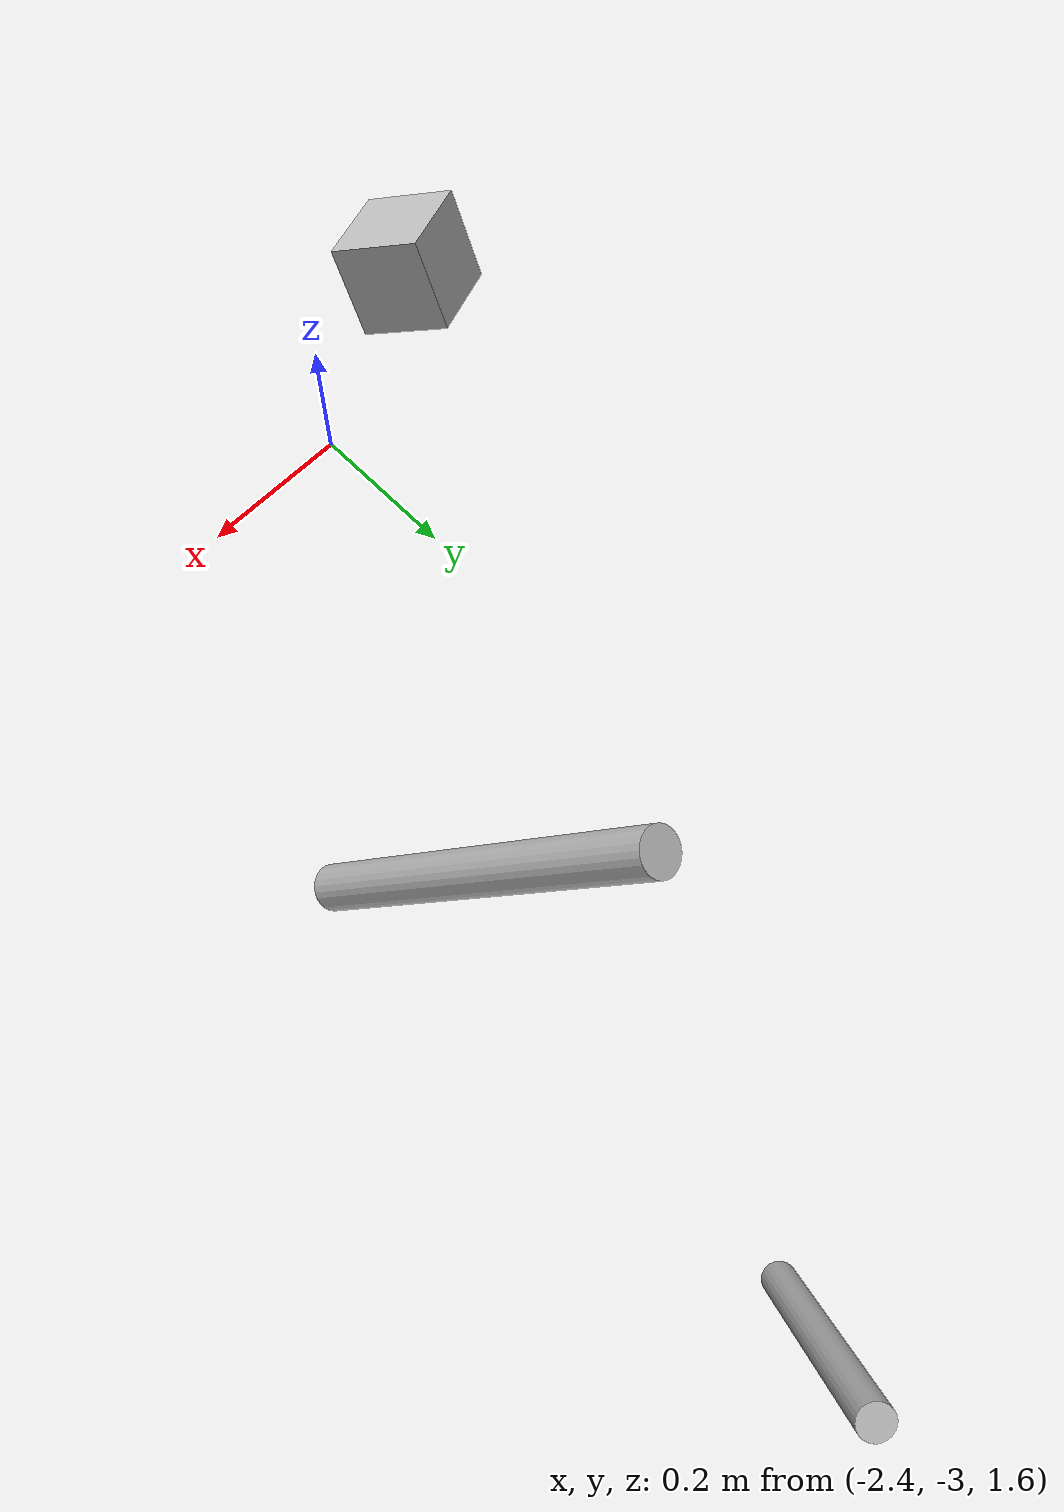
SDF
<?xml version="1.0" ?>
<sdf version="1.6">
  <world name="default">
    <physics name="fast" type="ignored">
      <real_time_factor>0</real_time_factor>
    </physics>

    <plugin
      filename="ignition-gazebo-physics-system"
      name="gz::sim::systems::Physics">
    </plugin>
    <plugin
      filename="ignition-gazebo-scene-broadcaster-system"
      name="gz::sim::systems::SceneBroadcaster">
    </plugin>

    <gui fullscreen="0">

      <!-- 3D scene -->
      <plugin filename="GzScene3D" name="3D View">
        <ignition-gui>
          <title>3D View</title>
          <property type="bool" key="showTitleBar">false</property>
          <property type="bool" key="resizable">false</property>
          <property type="double" key="z">0</property>
          <anchor line="right" target="window" target_line="right"/>
          <anchor line="left" target="window" target_line="left"/>
          <anchor line="top" target="window" target_line="top"/>
          <anchor line="bottom" target="window" target_line="bottom"/>
        </ignition-gui>

        <engine>ogre</engine>
        <scene>scene</scene>
        <ambient_light>0.4 0.4 0.4</ambient_light>
        <background_color>0.8 0.8 0.8</background_color>
        <camera_pose>-1 0 1 0 0.5 0</camera_pose>
      </plugin>

      <!-- World control -->
      <plugin filename="WorldControl" name="World control">
        <ignition-gui>
          <title>World control</title>
          <property type="bool" key="showTitleBar">false</property>
          <property type="bool" key="resizable">false</property>
          <property type="double" key="height">72</property>
          <property type="double" key="width">121</property>
          <property type="double" key="z">1</property>
          <anchor line="left" target="window" target_line="left"/>
          <anchor line="bottom" target="window" target_line="bottom"/>
        </ignition-gui>

        <play_pause>true</play_pause>
        <step>true</step>
        <start_paused>true</start_paused>

      </plugin>
    </gui>

    <gravity>0 0 0</gravity>

    <model name="canonical">
      <!-- random pose -->
      <pose>-2.15195357 -1.43940727 0.61459533  0.1970569  -0.73194673 0.09871452</pose>
      <link name="base_link">
        <!-- random pose -->
        <pose>0.71229333 -1.05448166 1.62442587  0.45922601  0.47291648  0.25646825</pose>
        <visual name="visual">
          <geometry>
            <box>
              <size>0.1 0.1 0.1</size>
            </box>
          </geometry>
        </visual>
        <collision name="base_collision">
          <geometry>
            <box>
              <size>0.1 0.1 0.1</size>
            </box>
          </geometry>
        </collision>
      </link>
      <link name="link1">
        <pose>0.8880941  -0.1920708  0.81992352 -0.81596066  0.95599217 -0.42638954</pose>
        <visual name="visual">
          <geometry>
            <cylinder>
              <length>0.4</length>
              <radius>0.02</radius>
            </cylinder>
          </geometry>
        </visual>
        <collision name="collision">
          <geometry>
            <cylinder>
              <length>0.4</length>
              <radius>0.02</radius>
            </cylinder>
          </geometry>
        </collision>
      </link>
      <joint name="j0" type="fixed">
        <parent>base_link</parent>
        <child>link1</child>
      </joint>
      <link name="link2">
        <pose>1.2961371  -0.53306886  1.35475164 -0.69270376 -0.7006309  -1.06392685</pose>
        <visual name="visual">
          <geometry>
            <cylinder>
              <length>0.4</length>
              <radius>0.02</radius>
            </cylinder>
          </geometry>
        </visual>
        <collision name="collision">
          <geometry>
            <cylinder>
              <length>0.4</length>
              <radius>0.02</radius>
            </cylinder>
          </geometry>
        </collision>
      </link>
      <joint name="j1" type="fixed">
        <parent>link1</parent>
        <child>link2</child>
      </joint>
    </model>

    <model name="nondefault_canonical" canonical_link="link1">
      <!-- random pose -->
      <pose>-2.15195357 -1.43940727 0.61459533  0.1970569  -0.73194673 0.09871452</pose>
      <link name="base_link">
        <!-- random pose -->
        <pose>0.71229333 -1.05448166 1.62442587  0.45922601  0.47291648  0.25646825</pose>
        <visual name="visual">
          <geometry>
            <box>
              <size>0.1 0.1 0.1</size>
            </box>
          </geometry>
        </visual>
        <collision name="base_collision">
          <geometry>
            <box>
              <size>0.1 0.1 0.1</size>
            </box>
          </geometry>
        </collision>
      </link>
      <link name="link1">
        <pose>0.8880941  -0.1920708  0.81992352 -0.81596066  0.95599217 -0.42638954</pose>
        <visual name="visual">
          <geometry>
            <cylinder>
              <length>0.4</length>
              <radius>0.02</radius>
            </cylinder>
          </geometry>
        </visual>
        <collision name="collision">
          <geometry>
            <cylinder>
              <length>0.4</length>
              <radius>0.02</radius>
            </cylinder>
          </geometry>
        </collision>
      </link>
      <joint name="j0" type="fixed">
        <parent>base_link</parent>
        <child>link1</child>
      </joint>
      <link name="link2">
        <pose>1.2961371  -0.53306886  1.35475164 -0.69270376 -0.7006309  -1.06392685</pose>
        <visual name="visual">
          <geometry>
            <cylinder>
              <length>0.4</length>
              <radius>0.02</radius>
            </cylinder>
          </geometry>
        </visual>
        <collision name="collision">
          <geometry>
            <cylinder>
              <length>0.4</length>
              <radius>0.02</radius>
            </cylinder>
          </geometry>
        </collision>
      </link>
      <joint name="j1" type="fixed">
        <parent>link1</parent>
        <child>link2</child>
      </joint>
    </model>
  </world>
</sdf>
